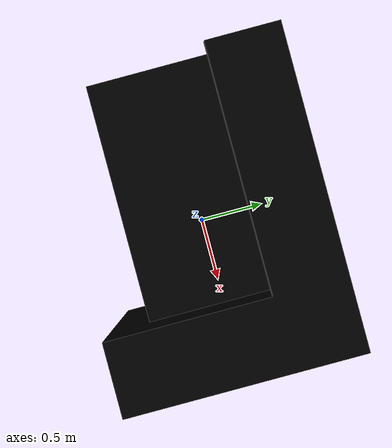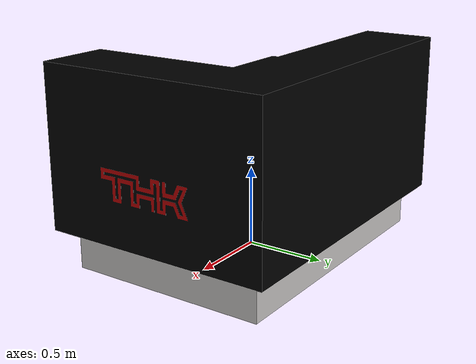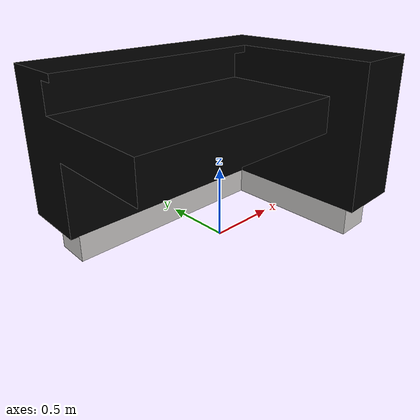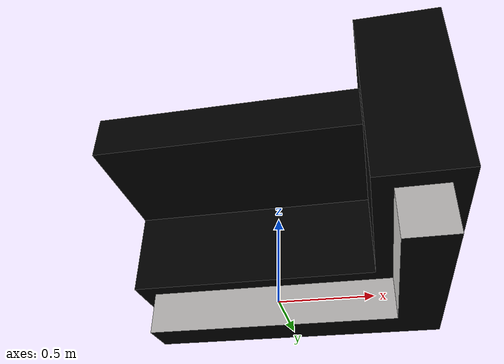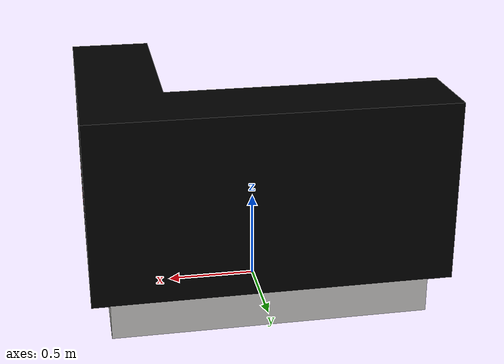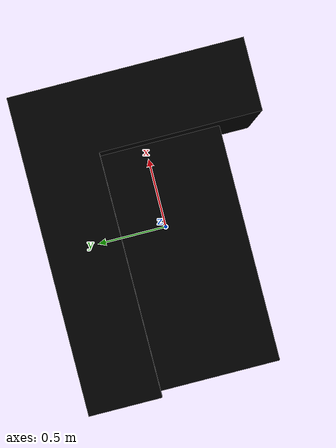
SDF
<?xml version='1.0'?>
<sdf version="1.6">
<model name="front">
  <pose>0 0 0 0 0 0</pose>
    <link name="link">
      <inertial>
        <pose>0.187 0.198 0.703 0 0 0</pose>
        <mass>133</mass>
        <inertia>
          <ixx>34.1709</ixx>
          <ixy>10.5012</ixy>
          <ixz>1.4704</ixz>
          <iyy>59.0873</iyy>
          <iyz>1.5080</iyz>
          <izz>66.3799</izz>
        </inertia>
      </inertial>
      <collision name="collision">
        <geometry>
          <mesh>
            <uri>model://front/front.dae</uri>
          </mesh>
        </geometry>
      </collision>
      <visual name="visual">
        <geometry>
          <mesh>
            <uri>model://front/front.dae</uri>
          </mesh>
        </geometry>
      </visual>
    </link>
  </model>
</sdf>
